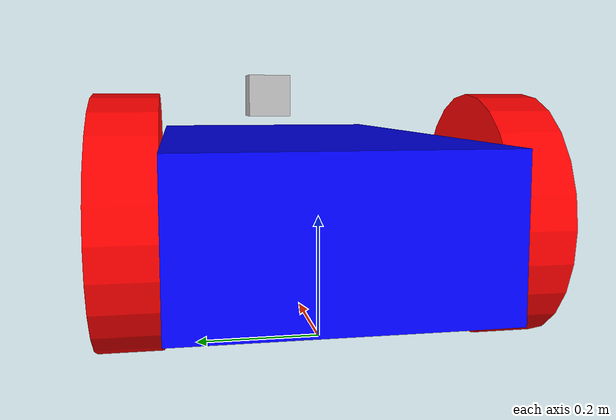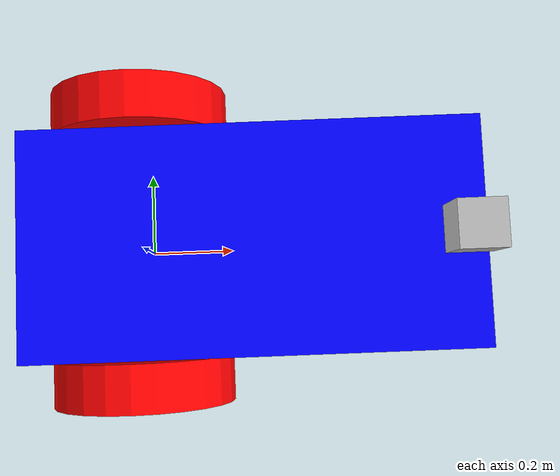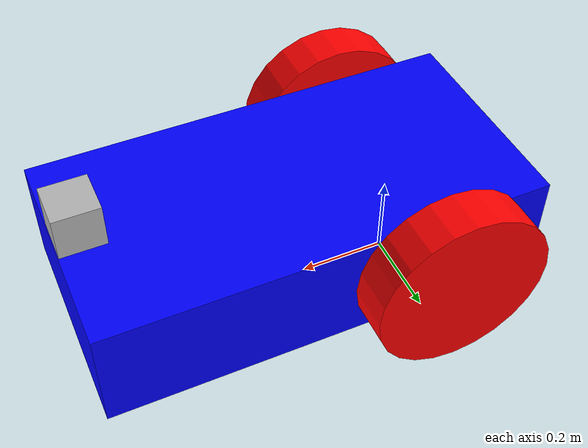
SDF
<?xml version="1.0"?>
<sdf version="1.8">
    <model name='vehicle_blue'>
        <link name='chassis'>
            <pose>0.25 0 0.2 0 0 0</pose>
            <inertial> <!--inertial
                properties of the link mass, inertia matix-->
                <mass>1.14395</mass>
                <inertia>
                    <ixx>0.126164</ixx>
                    <ixy>0</ixy>
                    <ixz>0</ixz>
                    <iyy>0.416519</iyy>
                    <iyz>0</iyz>
                    <izz>0.481014</izz>
                </inertia>
            </inertial>
            <visual name='visual'>
                <geometry>
                    <box>
                        <size>1.0 0.5 0.25</size> <!--question:
                        this size is in meter-->
                    </box>
                </geometry>
                <!--let's
                add color to our link-->
                <material>
                    <ambient>0.0 0.0 1.0 1</ambient>
                    <diffuse>0.0 0.0 1.0 1</diffuse>
                    <specular>0.0 0.0 1.0 1</specular>
                </material>
            </visual>
            <collision name='collision'> <!--todo:
                describe why we need the collision-->
                <geometry>
                    <box>
                        <size>1.0 0.5 0.25</size>
                    </box>
                </geometry>
            </collision>
            <sensor name="imu_sensor" type="imu">
                <always_on>1</always_on>
                <update_rate>1</update_rate>
                <visualize>true</visualize>
                <topic>imu</topic>
            </sensor>
            </link>

            <link name="lidar_link">
                <pose>0.7 0 0.4 0 0 0</pose>
                <inertial>
                  <mass>0.1</mass>
                  <inertia>
                    <ixx>0.000166667</ixx>
                    <iyy>0.000166667</iyy>
                    <izz>0.000166667</izz>
                  </inertia>
                </inertial>
                <collision name="collision">
                  <geometry>
                    <box>
                      <size>0.1 0.1 0.1</size>
                    </box>
                  </geometry>
                </collision>
                <visual name="visual">
                  <geometry>
                    <box>
                      <size>0.1 0.1 0.1</size>
                    </box>
                  </geometry>
                </visual>

                <sensor name='gpu_lidar' type='gpu_lidar'>
                    <pose>0 0 0 0 0 0</pose>
                    <topic>lidar</topic>
                    <gz_frame_id>lidar_link</gz_frame_id>
                    <update_rate>10</update_rate>
                    <ray>
                    <scan>
                        <horizontal>
                            <samples>100</samples>
                            <resolution>1</resolution>
                            <min_angle>-2.7</min_angle>
                            <max_angle>2.7</max_angle>
                        </horizontal>
                        <vertical>
                            <samples>1</samples>
                            <resolution>0.5</resolution>
                            <min_angle>0</min_angle>
                            <max_angle>0</max_angle>
                        </vertical>
                    </scan>
                    <range>
                        <min>0.08</min>
                        <max>5.0</max>
                        <resolution>0.01</resolution>
                    </range>
                </ray>
                    <always_on>
                1</always_on>
                    <visualize>true</visualize>
            </sensor>
        </link>
        <joint name='lidar_joint' type='fixed'>
            <parent>chassis</parent>
            <child>lidar_link</child>
          </joint>
        <!--let's
        build the left wheel-->
        <link name='left_wheel'>
            <pose relative_to="chassis">-0.25 0.3 0 -1.5707 0 0</pose> <!--angles
            are in radian-->
            <inertial>
                <mass>2</mass>
                <inertia>
                    <ixx>0.145833</ixx>
                    <ixy>0</ixy>
                    <ixz>0</ixz>
                    <iyy>0.145833</iyy>
                    <iyz>0</iyz>
                    <izz>0.125</izz>
                </inertia>
            </inertial>
            <visual name='visual'>
                <geometry>
                    <cylinder>
                        <radius>0.2</radius>
                        <length>0.1</length>
                    </cylinder>
                </geometry>
                <material>
                    <ambient>1.0 0.0 0.0 1</ambient>
                    <diffuse>1.0 0.0 0.0 1</diffuse>
                    <specular>1.0 0.0 0.0 1</specular>
                </material>
            </visual>
            <collision name='collision'>
                <geometry>
                    <cylinder>
                        <radius>0.2</radius>
                        <length>0.1</length>
                    </cylinder>
                </geometry>
            </collision>
        </link>

        <!--copy
        and paste for right wheel but change position-->
        <link name='right_wheel'>
            <pose relative_to="chassis">-0.25 -0.3 0 -1.5707 0 0</pose> <!--angles
            are in radian-->
            <inertial>
                <mass>1</mass>
                <inertia>
                    <ixx>0.145833</ixx>
                    <ixy>0</ixy>
                    <ixz>0</ixz>
                    <iyy>0.145833</iyy>
                    <iyz>0</iyz>
                    <izz>0.125</izz>
                </inertia>
            </inertial>
            <visual name='visual'>
                <geometry>
                    <cylinder>
                        <radius>0.2</radius>
                        <length>0.1</length>
                    </cylinder>
                </geometry>
                <material>
                    <ambient>1.0 0.0 0.0 1</ambient>
                    <diffuse>1.0 0.0 0.0 1</diffuse>
                    <specular>1.0 0.0 0.0 1</specular>
                </material>
            </visual>
            <collision name='collision'>
                <geometry>
                    <cylinder>
                        <radius>0.2</radius>
                        <length>0.1</length>
                    </cylinder>
                </geometry>
            </collision>
        </link>

        <!--caster
        wheel-->
        <link name='caster'>
            <pose>0.6 0 0.1 0 0 0</pose>
            <inertial>
                <mass>1</mass>
                <inertia>
                    <ixx>0.1</ixx>
                    <ixy>0</ixy>
                    <ixz>0</ixz>
                    <iyy>0.1</iyy>
                    <iyz>0</iyz>
                    <izz>0.1</izz>
                </inertia>
            </inertial>
            <visual name='visual'>
                <geometry>
                    <sphere>
                        <radius>0.1</radius>
                    </sphere>
                </geometry>
                <material>
                    <ambient>0.0 1 0.0 1</ambient>
                    <diffuse>0.0 1 0.0 1</diffuse>
                    <specular>0.0 1 0.0 1</specular>
                </material>
            </visual>
            <collision name='collision'>
                <surface>
                    <friction>
                      <ode>
                        <mu>0.0</mu>
                        <mu2>0.0</mu2>
                      </ode>
                    </friction>
                  </surface>
                <geometry>
                    <sphere>
                        <radius>0.1</radius>
                    </sphere>
                </geometry>
            </collision>
        </link>

        <!--connecting
        these links together using joints-->

        <joint name='left_wheel_joint' type='revolute'> <!--continous
            joint is not supported yet-->
            <pose relative_to='left_wheel' />
            <parent>chassis</parent>
            <child>left_wheel</child>
            <axis>
                <xyz expressed_in='__model__'>0 1 0</xyz> <!--can
                be descired to any frame or even arbitrary frames-->
                <limit>
                    <lower>-1.79769e+308</lower>    <!--negative
                    infinity-->
                    <upper>1.79769e+308</upper>     <!--positive
                    infinity-->
                </limit>
            </axis>
        </joint>

        <joint name='right_wheel_joint' type='revolute'>
            <pose relative_to='right_wheel' />
            <parent>chassis</parent>
            <child>right_wheel</child>
            <axis>
                <xyz expressed_in='__model__'>0 1 0</xyz>
                <limit>
                    <lower>-1.79769e+308</lower>    <!--negative
                    infinity-->
                    <upper>1.79769e+308</upper>     <!--positive
                    infinity-->
                </limit>
            </axis>
        </joint>

        <!--different
        type of joints ball joint--> <!--defult
        value is the child-->
        <joint name='caster_wheel' type='fixed'>
            <parent>chassis</parent>
            <child>caster</child>
        </joint>

        <!--diff
        drive plugin-->
        <plugin
            filename="gz-sim-diff-drive-system"
            name="gz::sim::systems::DiffDrive">
            <left_joint>left_wheel_joint</left_joint>
            <right_joint>right_wheel_joint</right_joint>
            <wheel_separation>0.6</wheel_separation>
            <wheel_radius>0.2</wheel_radius>
            <odom_publish_frequency>50</odom_publish_frequency>
            <topic>cmd_vel</topic>
            <frame_id>odom</frame_id>
            <child_frame_id>chassis</child_frame_id>
        </plugin>

    </model>
</sdf>
